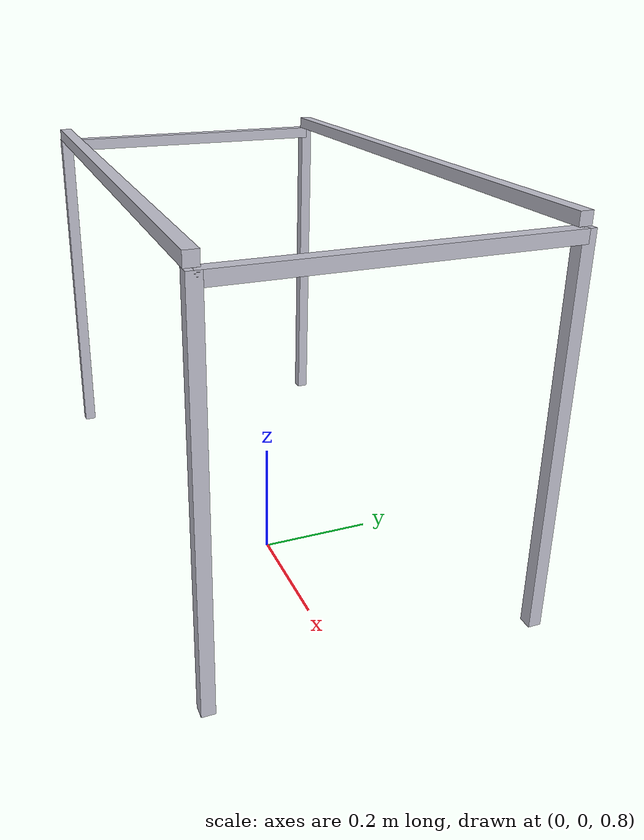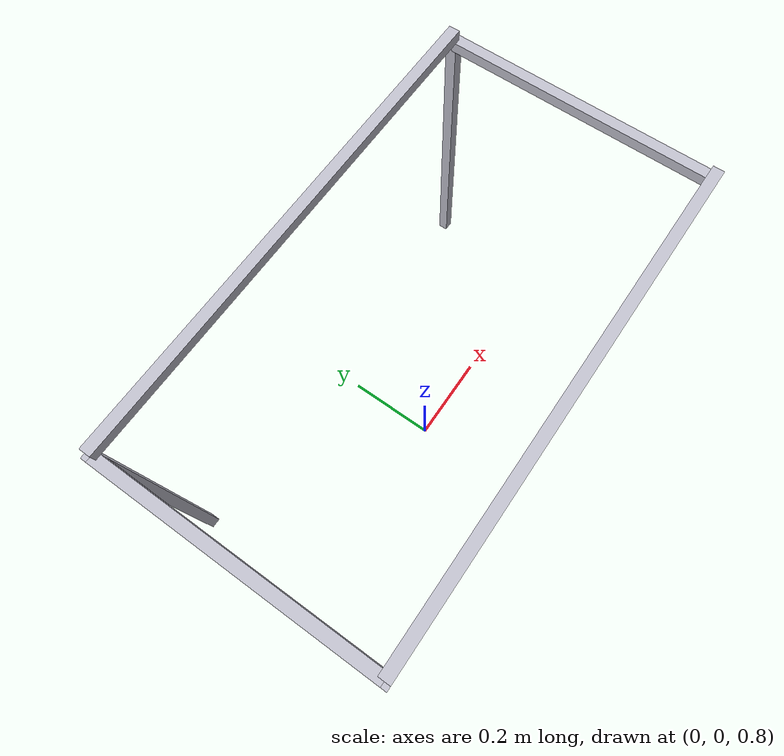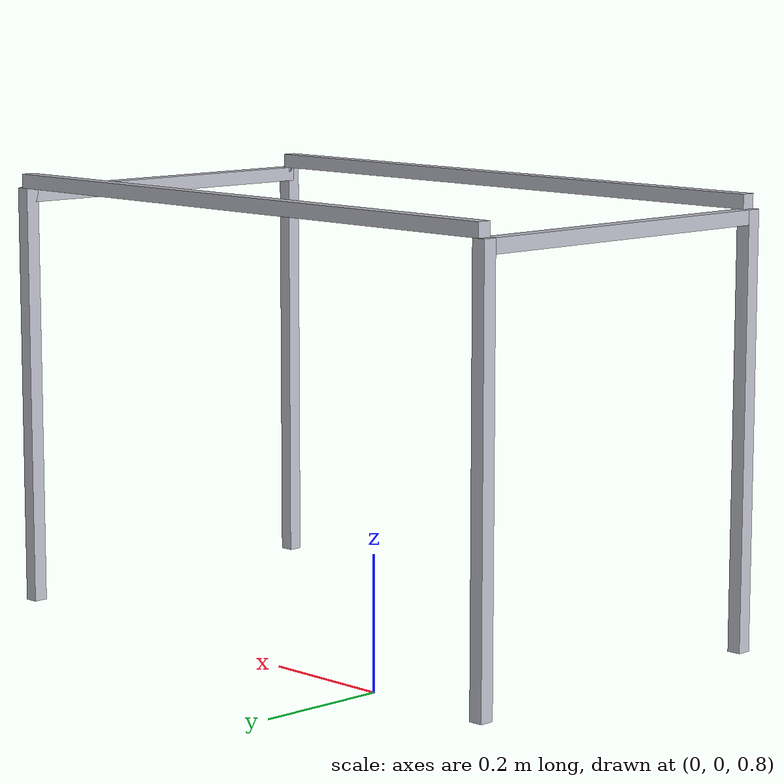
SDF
<?xml version="1.0" ?>
<sdf version="1.10">
  <model name="cell_frame">
    <static>true</static>

    <!-- Vertical posts: 2020 extrusion, 0.6m tall, centers at z=1.200 -->
    <link name="post_front_left">
      <pose>0.45 0.25 1.200 0 0 0</pose>
      <collision name="collision">
        <geometry><box><size>0.02 0.02 0.6</size></box></geometry>
      </collision>
      <visual name="visual">
        <geometry><box><size>0.02 0.02 0.6</size></box></geometry>
        <material>
          <ambient>0.6 0.6 0.65 1</ambient>
          <diffuse>0.75 0.75 0.8 1</diffuse>
        </material>
      </visual>
    </link>

    <link name="post_front_right">
      <pose>0.45 -0.25 1.200 0 0 0</pose>
      <collision name="collision">
        <geometry><box><size>0.02 0.02 0.6</size></box></geometry>
      </collision>
      <visual name="visual">
        <geometry><box><size>0.02 0.02 0.6</size></box></geometry>
        <material>
          <ambient>0.6 0.6 0.65 1</ambient>
          <diffuse>0.75 0.75 0.8 1</diffuse>
        </material>
      </visual>
    </link>

    <link name="post_back_left">
      <pose>-0.45 0.25 1.200 0 0 0</pose>
      <collision name="collision">
        <geometry><box><size>0.02 0.02 0.6</size></box></geometry>
      </collision>
      <visual name="visual">
        <geometry><box><size>0.02 0.02 0.6</size></box></geometry>
        <material>
          <ambient>0.6 0.6 0.65 1</ambient>
          <diffuse>0.75 0.75 0.8 1</diffuse>
        </material>
      </visual>
    </link>

    <link name="post_back_right">
      <pose>-0.45 -0.25 1.200 0 0 0</pose>
      <collision name="collision">
        <geometry><box><size>0.02 0.02 0.6</size></box></geometry>
      </collision>
      <visual name="visual">
        <geometry><box><size>0.02 0.02 0.6</size></box></geometry>
        <material>
          <ambient>0.6 0.6 0.65 1</ambient>
          <diffuse>0.75 0.75 0.8 1</diffuse>
        </material>
      </visual>
    </link>

    <!-- Top rails (staggered to avoid corner overlap) -->
    <link name="rail_top_left">
      <pose>0 0.25 1.510 0 0 0</pose>
      <collision name="collision">
        <geometry><box><size>0.90 0.02 0.02</size></box></geometry>
      </collision>
      <visual name="visual">
        <geometry><box><size>0.90 0.02 0.02</size></box></geometry>
        <material>
          <ambient>0.6 0.6 0.65 1</ambient>
          <diffuse>0.75 0.75 0.8 1</diffuse>
        </material>
      </visual>
    </link>

    <link name="rail_top_right">
      <pose>0 -0.25 1.510 0 0 0</pose>
      <collision name="collision">
        <geometry><box><size>0.90 0.02 0.02</size></box></geometry>
      </collision>
      <visual name="visual">
        <geometry><box><size>0.90 0.02 0.02</size></box></geometry>
        <material>
          <ambient>0.6 0.6 0.65 1</ambient>
          <diffuse>0.75 0.75 0.8 1</diffuse>
        </material>
      </visual>
    </link>

    <link name="rail_top_front">
      <pose>0.45 0 1.490 0 0 0</pose>
      <collision name="collision">
        <geometry><box><size>0.02 0.50 0.02</size></box></geometry>
      </collision>
      <visual name="visual">
        <geometry><box><size>0.02 0.50 0.02</size></box></geometry>
        <material>
          <ambient>0.6 0.6 0.65 1</ambient>
          <diffuse>0.75 0.75 0.8 1</diffuse>
        </material>
      </visual>
    </link>

    <link name="rail_top_back">
      <pose>-0.45 0 1.490 0 0 0</pose>
      <collision name="collision">
        <geometry><box><size>0.02 0.50 0.02</size></box></geometry>
      </collision>
      <visual name="visual">
        <geometry><box><size>0.02 0.50 0.02</size></box></geometry>
        <material>
          <ambient>0.6 0.6 0.65 1</ambient>
          <diffuse>0.75 0.75 0.8 1</diffuse>
        </material>
      </visual>
    </link>

  </model>
</sdf>
